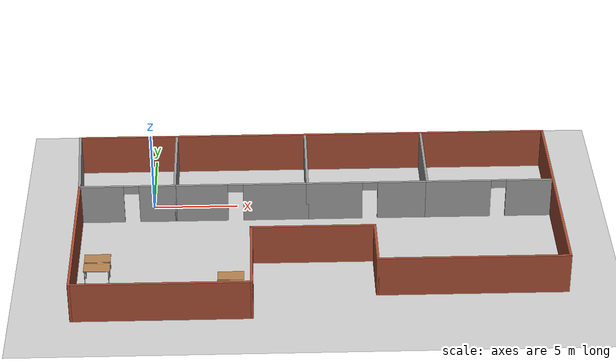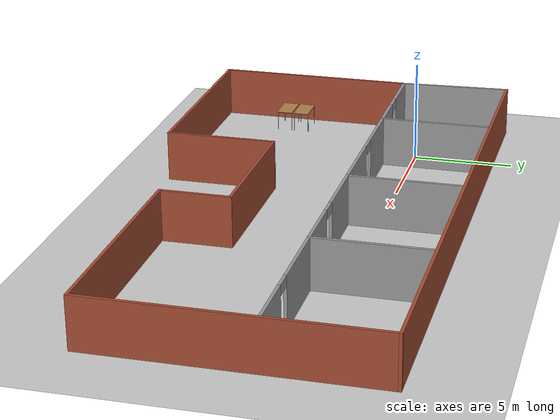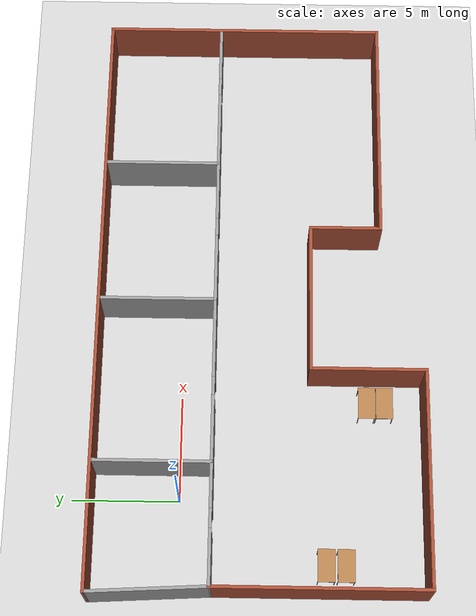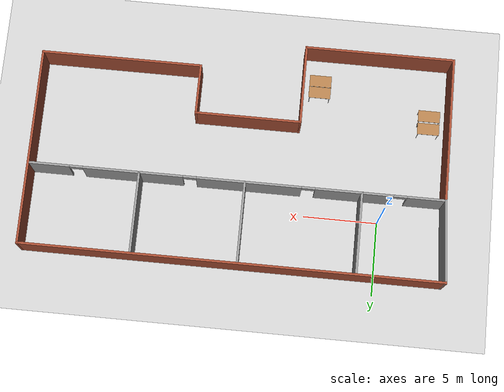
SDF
<sdf version="1.6">
 <world name="default">
  <light name="sun" type="directional">
   <pose>0 0 10 0 -0 0</pose>
   <diffuse>0.8 0.8 0.8 1</diffuse>
   <specular>0.2 0.2 0.2 1</specular>
   <attenuation>
    <range>1000</range>
    <constant>0.9</constant>
    <linear>0.01</linear>
    <quadratic>0.001</quadratic>
   </attenuation>
   <direction>-0.5 0.1 -0.9</direction>
  </light>
  <model name="ground_plane">
   <static>1</static>
   <link name="link">
    <collision name="collision">
     <geometry><plane><normal>0 0 1</normal><size>100 100</size></plane></geometry>
     <surface><friction><ode><mu>100</mu><mu2>50</mu2></ode></friction></surface>
    </collision>
    <visual name="visual">
     <cast_shadows>0</cast_shadows>
     <geometry><plane><normal>0 0 1</normal><size>100 100</size></plane></geometry>
     <material>
      <script><uri>file://media/materials/scripts/gazebo.material</uri><name>Gazebo/Grey</name></script>
     </material>
    </visual>
   </link>
  </model>
  <gravity>0 0 -9.8</gravity>
  <magnetic_field>6e-06 2.3e-05 -4.2e-05</magnetic_field>
  <atmosphere type="adiabatic"/>
  <physics name="default_physics" default="0" type="ode">
   <max_step_size>0.001</max_step_size>
   <real_time_factor>1</real_time_factor>
   <real_time_update_rate>1000</real_time_update_rate>
  </physics>
  <scene><ambient>0.4 0.4 0.4 1</ambient><background>0.7 0.7 0.7 1</background><shadows>1</shadows></scene>
  <spherical_coordinates>
   <surface_model>EARTH_WGS84</surface_model>
   <latitude_deg>0</latitude_deg>
   <longitude_deg>0</longitude_deg>
   <elevation>0</elevation>
   <heading_deg>0</heading_deg>
  </spherical_coordinates>
  <model name="MyOffice">
   <pose>9.60301 -3.65301 0 0 -0 0</pose>
   <link name="Wall_0">
    <collision name="Wall_0_Collision">
     <geometry><box><size>10 0.15 2.5</size></box></geometry>
     <pose>0 0 1.25 0 -0 0</pose>
    </collision>
    <visual name="Wall_0_Visual">
     <pose>0 0 1.25 0 -0 0</pose>
     <geometry><box><size>10 0.15 2.5</size></box></geometry>
     <material>
      <script><uri>file://media/materials/scripts/gazebo.material</uri><name>Gazebo/Bricks</name></script>
      <ambient>1 1 1 1</ambient>
     </material>
     <meta><layer>0</layer></meta>
    </visual>
    <pose>-13.873 -2.75199 0 0 0 -1.5708</pose>
   </link>
   <link name="Wall_1">
    <collision name="Wall_1_Collision">
     <geometry><box><size>10.25 0.15 2.5</size></box></geometry>
     <pose>0 0 1.25 0 -0 0</pose>
    </collision>
    <visual name="Wall_1_Visual">
     <pose>0 0 1.25 0 -0 0</pose>
     <geometry><box><size>10.25 0.15 2.5</size></box></geometry>
     <material>
      <script><uri>file://media/materials/scripts/gazebo.material</uri><name>Gazebo/Bricks</name></script>
      <ambient>1 1 1 1</ambient>
     </material>
     <meta><layer>0</layer></meta>
    </visual>
    <pose>-8.82301 -7.67699 0 0 -0 0</pose>
   </link>
   <link name="Wall_10">
    <collision name="Wall_10_Collision">
     <geometry><box><size>5.5 0.15 2.5</size></box></geometry>
     <pose>0 0 1.25 0 -0 0</pose>
    </collision>
    <visual name="Wall_10_Visual">
     <pose>0 0 1.25 0 -0 0</pose>
     <geometry><box><size>5.5 0.15 2.5</size></box></geometry>
     <material>
      <script><uri>file://media/materials/scripts/gazebo.material</uri><name>Gazebo/Grey</name></script>
      <ambient>1 1 1 1</ambient>
     </material>
     <meta><layer>0</layer></meta>
    </visual>
    <pose>-8.27301 4.84801 0 0 -0 1.5708</pose>
   </link>
   <link name="Wall_12">
    <pose>-4.34801 2.17301 0 0 -0 0</pose>
    <visual name="Wall_12_Visual_0">
     <pose>-2.39397 0 1.25 0 -0 0</pose>
     <geometry><box><size>3.21206 0.15 2.5</size></box></geometry>
     <material>
      <script><uri>file://media/materials/scripts/gazebo.material</uri><name>Gazebo/Grey</name></script>
      <ambient>1 1 1 1</ambient>
     </material>
     <meta><layer>0</layer></meta>
    </visual>
    <collision name="Wall_12_Collision_0">
     <geometry><box><size>3.21206 0.15 2.5</size></box></geometry>
     <pose>-2.39397 0 1.25 0 -0 0</pose>
    </collision>
    <visual name="Wall_12_Visual_1">
     <pose>2.05603 0 1.25 0 -0 0</pose>
     <geometry><box><size>3.88794 0.15 2.5</size></box></geometry>
     <material>
      <script><uri>file://media/materials/scripts/gazebo.material</uri><name>Gazebo/Grey</name></script>
      <ambient>1 1 1 1</ambient>
     </material>
     <meta><layer>0</layer></meta>
    </visual>
    <collision name="Wall_12_Collision_1">
     <geometry><box><size>3.88794 0.15 2.5</size></box></geometry>
     <pose>2.05603 0 1.25 0 -0 0</pose>
    </collision>
    <visual name="Wall_12_Visual_2">
     <pose>-0.337937 0 2.25 0 -0 0</pose>
     <geometry><box><size>0.9 0.15 0.5</size></box></geometry>
     <material>
      <script><uri>file://media/materials/scripts/gazebo.material</uri><name>Gazebo/Grey</name></script>
      <ambient>1 1 1 1</ambient>
     </material>
     <meta><layer>0</layer></meta>
    </visual>
    <collision name="Wall_12_Collision_2">
     <geometry><box><size>0.9 0.15 0.5</size></box></geometry>
     <pose>-0.337937 0 2.25 0 -0 0</pose>
    </collision>
   </link>
   <link name="Wall_13">
    <collision name="Wall_13_Collision">
     <geometry><box><size>5.5 0.15 2.5</size></box></geometry>
     <pose>0 0 1.25 0 -0 0</pose>
    </collision>
    <visual name="Wall_13_Visual">
     <pose>0 0 1.25 0 -0 0</pose>
     <geometry><box><size>5.5 0.15 2.5</size></box></geometry>
     <material>
      <script><uri>file://media/materials/scripts/gazebo.material</uri><name>Gazebo/Grey</name></script>
      <ambient>1 1 1 1</ambient>
     </material>
     <meta><layer>0</layer></meta>
    </visual>
    <pose>-0.423014 4.84801 0 0 -0 1.5708</pose>
   </link>
   <link name="Wall_15">
    <pose>3.12699 2.17301 0 0 -0 0</pose>
    <visual name="Wall_15_Visual_0">
     <pose>-1.95623 0 1.25 0 -0 0</pose>
     <geometry><box><size>3.33753 0.15 2.5</size></box></geometry>
     <material>
      <script><uri>file://media/materials/scripts/gazebo.material</uri><name>Gazebo/Grey</name></script>
      <ambient>1 1 1 1</ambient>
     </material>
     <meta><layer>0</layer></meta>
    </visual>
    <collision name="Wall_15_Collision_0">
     <geometry><box><size>3.33753 0.15 2.5</size></box></geometry>
     <pose>-1.95623 0 1.25 0 -0 0</pose>
    </collision>
    <visual name="Wall_15_Visual_1">
     <pose>2.11877 0 1.25 0 -0 0</pose>
     <geometry><box><size>3.01247 0.15 2.5</size></box></geometry>
     <material>
      <script><uri>file://media/materials/scripts/gazebo.material</uri><name>Gazebo/Grey</name></script>
      <ambient>1 1 1 1</ambient>
     </material>
     <meta><layer>0</layer></meta>
    </visual>
    <collision name="Wall_15_Collision_1">
     <geometry><box><size>3.01247 0.15 2.5</size></box></geometry>
     <pose>2.11877 0 1.25 0 -0 0</pose>
    </collision>
    <visual name="Wall_15_Visual_2">
     <pose>0.162532 0 2.25 0 -0 0</pose>
     <geometry><box><size>0.9 0.15 0.5</size></box></geometry>
     <material>
      <script><uri>file://media/materials/scripts/gazebo.material</uri><name>Gazebo/Grey</name></script>
      <ambient>1 1 1 1</ambient>
     </material>
     <meta><layer>0</layer></meta>
    </visual>
    <collision name="Wall_15_Collision_2">
     <geometry><box><size>0.9 0.15 0.5</size></box></geometry>
     <pose>0.162532 0 2.25 0 -0 0</pose>
    </collision>
   </link>
   <link name="Wall_16">
    <collision name="Wall_16_Collision">
     <geometry><box><size>5.5 0.15 2.5</size></box></geometry>
     <pose>0 0 1.25 0 -0 0</pose>
    </collision>
    <visual name="Wall_16_Visual">
     <pose>0 0 1.25 0 -0 0</pose>
     <geometry><box><size>5.5 0.15 2.5</size></box></geometry>
     <material>
      <script><uri>file://media/materials/scripts/gazebo.material</uri><name>Gazebo/Grey</name></script>
      <ambient>1 1 1 1</ambient>
     </material>
     <meta><layer>0</layer></meta>
    </visual>
    <pose>6.67699 4.84801 0 0 -0 1.5708</pose>
   </link>
   <link name="Wall_18">
    <pose>10.352 2.17301 0 0 -0 0</pose>
    <visual name="Wall_18_Visual_0">
     <pose>-1.80674 0 1.25 0 -0 0</pose>
     <geometry><box><size>3.88652 0.15 2.5</size></box></geometry>
     <material>
      <script><uri>file://media/materials/scripts/gazebo.material</uri><name>Gazebo/Grey</name></script>
      <ambient>1 1 1 1</ambient>
     </material>
     <meta><layer>0</layer></meta>
    </visual>
    <collision name="Wall_18_Collision_0">
     <geometry><box><size>3.88652 0.15 2.5</size></box></geometry>
     <pose>-1.80674 0 1.25 0 -0 0</pose>
    </collision>
    <visual name="Wall_18_Visual_1">
     <pose>2.39326 0 1.25 0 -0 0</pose>
     <geometry><box><size>2.71348 0.15 2.5</size></box></geometry>
     <material>
      <script><uri>file://media/materials/scripts/gazebo.material</uri><name>Gazebo/Grey</name></script>
      <ambient>1 1 1 1</ambient>
     </material>
     <meta><layer>0</layer></meta>
    </visual>
    <collision name="Wall_18_Collision_1">
     <geometry><box><size>2.71348 0.15 2.5</size></box></geometry>
     <pose>2.39326 0 1.25 0 -0 0</pose>
    </collision>
    <visual name="Wall_18_Visual_2">
     <pose>0.586519 0 2.25 0 -0 0</pose>
     <geometry><box><size>0.9 0.15 0.5</size></box></geometry>
     <material>
      <script><uri>file://media/materials/scripts/gazebo.material</uri><name>Gazebo/Grey</name></script>
      <ambient>1 1 1 1</ambient>
     </material>
     <meta><layer>0</layer></meta>
    </visual>
    <collision name="Wall_18_Collision_2">
     <geometry><box><size>0.9 0.15 0.5</size></box></geometry>
     <pose>0.586519 0 2.25 0 -0 0</pose>
    </collision>
   </link>
   <link name="Wall_2">
    <collision name="Wall_2_Collision">
     <geometry><box><size>5.5 0.15 2.5</size></box></geometry>
     <pose>0 0 1.25 0 -0 0</pose>
    </collision>
    <visual name="Wall_2_Visual">
     <pose>0 0 1.25 0 -0 0</pose>
     <geometry><box><size>5.5 0.15 2.5</size></box></geometry>
     <material>
      <script><uri>file://media/materials/scripts/gazebo.material</uri><name>Gazebo/Bricks</name></script>
      <ambient>1 1 1 1</ambient>
     </material>
     <meta><layer>0</layer></meta>
    </visual>
    <pose>-3.77301 -5.00199 0 0 -0 1.5708</pose>
   </link>
   <link name="Wall_3">
    <collision name="Wall_3_Collision">
     <geometry><box><size>7.25 0.15 2.5</size></box></geometry>
     <pose>0 0 1.25 0 -0 0</pose>
    </collision>
    <visual name="Wall_3_Visual">
     <pose>0 0 1.25 0 -0 0</pose>
     <geometry><box><size>7.25 0.15 2.5</size></box></geometry>
     <material>
      <script><uri>file://media/materials/scripts/gazebo.material</uri><name>Gazebo/Bricks</name></script>
      <ambient>1 1 1 1</ambient>
     </material>
     <meta><layer>0</layer></meta>
    </visual>
    <pose>-0.223014 -2.32699 0 0 -0 0</pose>
   </link>
   <link name="Wall_4">
    <collision name="Wall_4_Collision">
     <geometry><box><size>3.5 0.15 2.5</size></box></geometry>
     <pose>0 0 1.25 0 -0 0</pose>
    </collision>
    <visual name="Wall_4_Visual">
     <pose>0 0 1.25 0 -0 0</pose>
     <geometry><box><size>3.5 0.15 2.5</size></box></geometry>
     <material>
      <script><uri>file://media/materials/scripts/gazebo.material</uri><name>Gazebo/Bricks</name></script>
      <ambient>1 1 1 1</ambient>
     </material>
     <meta><layer>0</layer></meta>
    </visual>
    <pose>3.32699 -4.00199 0 0 0 -1.5708</pose>
   </link>
   <link name="Wall_5">
    <collision name="Wall_5_Collision">
     <geometry><box><size>11 0.15 2.5</size></box></geometry>
     <pose>0 0 1.25 0 -0 0</pose>
    </collision>
    <visual name="Wall_5_Visual">
     <pose>0 0 1.25 0 -0 0</pose>
     <geometry><box><size>11 0.15 2.5</size></box></geometry>
     <material>
      <script><uri>file://media/materials/scripts/gazebo.material</uri><name>Gazebo/Bricks</name></script>
      <ambient>1 1 1 1</ambient>
     </material>
     <meta><layer>0</layer></meta>
    </visual>
    <pose>8.75199 -5.67699 0 0 -0 0</pose>
   </link>
   <link name="Wall_6">
    <collision name="Wall_6_Collision">
     <geometry><box><size>13.5 0.15 2.5</size></box></geometry>
     <pose>0 0 1.25 0 -0 0</pose>
    </collision>
    <visual name="Wall_6_Visual">
     <pose>0 0 1.25 0 -0 0</pose>
     <geometry><box><size>13.5 0.15 2.5</size></box></geometry>
     <material>
      <script><uri>file://media/materials/scripts/gazebo.material</uri><name>Gazebo/Bricks</name></script>
      <ambient>1 1 1 1</ambient>
     </material>
     <meta><layer>0</layer></meta>
    </visual>
    <pose>14.177 0.998013 0 0 -0 1.5708</pose>
   </link>
   <link name="Wall_7">
    <collision name="Wall_7_Collision">
     <geometry><box><size>28.5 0.15 2.5</size></box></geometry>
     <pose>0 0 1.25 0 -0 0</pose>
    </collision>
    <visual name="Wall_7_Visual">
     <pose>0 0 1.25 0 -0 0</pose>
     <geometry><box><size>28.5 0.15 2.5</size></box></geometry>
     <material>
      <script><uri>file://media/materials/scripts/gazebo.material</uri><name>Gazebo/Bricks</name></script>
      <ambient>1 1 1 1</ambient>
     </material>
     <meta><layer>0</layer></meta>
    </visual>
    <pose>0.001986 7.67301 0 0 -0 3.14159</pose>
   </link>
   <link name="Wall_8">
    <collision name="Wall_8_Collision">
     <geometry><box><size>5.65818 0.15 2.5</size></box></geometry>
     <pose>0 0 1.25 0 -0 0</pose>
    </collision>
    <visual name="Wall_8_Visual">
     <pose>0 0 1.25 0 -0 0</pose>
     <geometry><box><size>5.65818 0.15 2.5</size></box></geometry>
     <material>
      <script><uri>file://media/materials/scripts/gazebo.material</uri><name>Gazebo/Grey</name></script>
      <ambient>1 1 1 1</ambient>
     </material>
     <meta><layer>0</layer></meta>
    </visual>
    <pose>-14.023 4.92301 0 0 0 -1.51631</pose>
   </link>
   <link name="Wall_9">
    <pose>-11.073 2.17301 0 0 -0 0</pose>
    <visual name="Wall_9_Visual_0">
     <pose>-1.54722 0 1.25 0 -0 0</pose>
     <geometry><box><size>2.65556 0.15 2.5</size></box></geometry>
     <material>
      <script><uri>file://media/materials/scripts/gazebo.material</uri><name>Gazebo/Grey</name></script>
      <ambient>1 1 1 1</ambient>
     </material>
     <meta><layer>0</layer></meta>
    </visual>
    <collision name="Wall_9_Collision_0">
     <geometry><box><size>2.65556 0.15 2.5</size></box></geometry>
     <pose>-1.54722 0 1.25 0 -0 0</pose>
    </collision>
    <visual name="Wall_9_Visual_1">
     <pose>1.77778 0 1.25 0 -0 0</pose>
     <geometry><box><size>2.19444 0.15 2.5</size></box></geometry>
     <material>
      <script><uri>file://media/materials/scripts/gazebo.material</uri><name>Gazebo/Grey</name></script>
      <ambient>1 1 1 1</ambient>
     </material>
     <meta><layer>0</layer></meta>
    </visual>
    <collision name="Wall_9_Collision_1">
     <geometry><box><size>2.19444 0.15 2.5</size></box></geometry>
     <pose>1.77778 0 1.25 0 -0 0</pose>
    </collision>
    <visual name="Wall_9_Visual_2">
     <pose>0.230561 0 2.25 0 -0 0</pose>
     <geometry><box><size>0.9 0.15 0.5</size></box></geometry>
     <material>
      <script><uri>file://media/materials/scripts/gazebo.material</uri><name>Gazebo/Grey</name></script>
      <ambient>1 1 1 1</ambient>
     </material>
     <meta><layer>0</layer></meta>
    </visual>
    <collision name="Wall_9_Collision_2">
     <geometry><box><size>0.9 0.15 0.5</size></box></geometry>
     <pose>0.230561 0 2.25 0 -0 0</pose>
    </collision>
   </link>
   <static>1</static>
  </model>
  <model name="table">
   <static>1</static>
   <link name="link">
    <collision name="surface">
     <pose>0 0 1 0 -0 0</pose>
     <geometry><box><size>1.5 0.8 0.03</size></box></geometry>
     <surface><friction><ode><mu>0.6</mu><mu2>0.6</mu2></ode></friction></surface>
    </collision>
    <visual name="visual1">
     <pose>0 0 1 0 -0 0</pose>
     <geometry><box><size>1.5 0.8 0.03</size></box></geometry>
     <material>
      <script><uri>file://media/materials/scripts/gazebo.material</uri><name>Gazebo/Wood</name></script>
     </material>
    </visual>
    <collision name="front_left_leg">
     <pose>0.68 0.38 0.5 0 -0 0</pose>
     <geometry><cylinder><radius>0.02</radius><length>1</length></cylinder></geometry>
    </collision>
    <visual name="front_left_leg">
     <pose>0.68 0.38 0.5 0 -0 0</pose>
     <geometry><cylinder><radius>0.02</radius><length>1</length></cylinder></geometry>
     <material>
      <script><uri>file://media/materials/scripts/gazebo.material</uri><name>Gazebo/Grey</name></script>
     </material>
    </visual>
    <collision name="front_right_leg">
     <pose>0.68 -0.38 0.5 0 -0 0</pose>
     <geometry><cylinder><radius>0.02</radius><length>1</length></cylinder></geometry>
    </collision>
    <visual name="front_right_leg">
     <pose>0.68 -0.38 0.5 0 -0 0</pose>
     <geometry><cylinder><radius>0.02</radius><length>1</length></cylinder></geometry>
     <material>
      <script><uri>file://media/materials/scripts/gazebo.material</uri><name>Gazebo/Grey</name></script>
     </material>
    </visual>
    <collision name="back_right_leg">
     <pose>-0.68 -0.38 0.5 0 -0 0</pose>
     <geometry><cylinder><radius>0.02</radius><length>1</length></cylinder></geometry>
    </collision>
    <visual name="back_right_leg">
     <pose>-0.68 -0.38 0.5 0 -0 0</pose>
     <geometry><cylinder><radius>0.02</radius><length>1</length></cylinder></geometry>
     <material>
      <script><uri>file://media/materials/scripts/gazebo.material</uri><name>Gazebo/Grey</name></script>
     </material>
    </visual>
    <collision name="back_left_leg">
     <pose>-0.68 0.38 0.5 0 -0 0</pose>
     <geometry><cylinder><radius>0.02</radius><length>1</length></cylinder></geometry>
    </collision>
    <visual name="back_left_leg">
     <pose>-0.68 0.38 0.5 0 -0 0</pose>
     <geometry><cylinder><radius>0.02</radius><length>1</length></cylinder></geometry>
     <material>
      <script><uri>file://media/materials/scripts/gazebo.material</uri><name>Gazebo/Grey</name></script>
     </material>
    </visual>
   </link>
   <pose>-3.00516 -7.63008 0 0 -0 0</pose>
  </model>
  <model name="table_clone">
   <static>1</static>
   <link name="link">
    <collision name="surface">
     <pose>0 0 1 0 -0 0</pose>
     <geometry><box><size>1.5 0.8 0.03</size></box></geometry>
     <surface><friction><ode><mu>0.6</mu><mu2>0.6</mu2></ode></friction></surface>
    </collision>
    <visual name="visual1">
     <pose>0 0 1 0 -0 0</pose>
     <geometry><box><size>1.5 0.8 0.03</size></box></geometry>
     <material>
      <script><uri>file://media/materials/scripts/gazebo.material</uri><name>Gazebo/Wood</name></script>
     </material>
    </visual>
    <collision name="front_left_leg">
     <pose>0.68 0.38 0.5 0 -0 0</pose>
     <geometry><cylinder><radius>0.02</radius><length>1</length></cylinder></geometry>
    </collision>
    <visual name="front_left_leg">
     <pose>0.68 0.38 0.5 0 -0 0</pose>
     <geometry><cylinder><radius>0.02</radius><length>1</length></cylinder></geometry>
     <material>
      <script><uri>file://media/materials/scripts/gazebo.material</uri><name>Gazebo/Grey</name></script>
     </material>
    </visual>
    <collision name="front_right_leg">
     <pose>0.68 -0.38 0.5 0 -0 0</pose>
     <geometry><cylinder><radius>0.02</radius><length>1</length></cylinder></geometry>
    </collision>
    <visual name="front_right_leg">
     <pose>0.68 -0.38 0.5 0 -0 0</pose>
     <geometry><cylinder><radius>0.02</radius><length>1</length></cylinder></geometry>
     <material>
      <script><uri>file://media/materials/scripts/gazebo.material</uri><name>Gazebo/Grey</name></script>
     </material>
    </visual>
    <collision name="back_right_leg">
     <pose>-0.68 -0.38 0.5 0 -0 0</pose>
     <geometry><cylinder><radius>0.02</radius><length>1</length></cylinder></geometry>
    </collision>
    <visual name="back_right_leg">
     <pose>-0.68 -0.38 0.5 0 -0 0</pose>
     <geometry><cylinder><radius>0.02</radius><length>1</length></cylinder></geometry>
     <material>
      <script><uri>file://media/materials/scripts/gazebo.material</uri><name>Gazebo/Grey</name></script>
     </material>
    </visual>
    <collision name="back_left_leg">
     <pose>-0.68 0.38 0.5 0 -0 0</pose>
     <geometry><cylinder><radius>0.02</radius><length>1</length></cylinder></geometry>
    </collision>
    <visual name="back_left_leg">
     <pose>-0.68 0.38 0.5 0 -0 0</pose>
     <geometry><cylinder><radius>0.02</radius><length>1</length></cylinder></geometry>
     <material>
      <script><uri>file://media/materials/scripts/gazebo.material</uri><name>Gazebo/Grey</name></script>
     </material>
    </visual>
   </link>
   <pose>-2.99794 -6.72761 0 0 -0 0</pose>
  </model>
  <model name="table_clone_0">
   <static>1</static>
   <link name="link">
    <collision name="surface">
     <pose>0 0 1 0 -0 0</pose>
     <geometry><box><size>1.5 0.8 0.03</size></box></geometry>
     <surface><friction><ode><mu>0.6</mu><mu2>0.6</mu2></ode></friction></surface>
    </collision>
    <visual name="visual1">
     <pose>0 0 1 0 -0 0</pose>
     <geometry><box><size>1.5 0.8 0.03</size></box></geometry>
     <material>
      <script><uri>file://media/materials/scripts/gazebo.material</uri><name>Gazebo/Wood</name></script>
     </material>
    </visual>
    <collision name="front_left_leg">
     <pose>0.68 0.38 0.5 0 -0 0</pose>
     <geometry><cylinder><radius>0.02</radius><length>1</length></cylinder></geometry>
    </collision>
    <visual name="front_left_leg">
     <pose>0.68 0.38 0.5 0 -0 0</pose>
     <geometry><cylinder><radius>0.02</radius><length>1</length></cylinder></geometry>
     <material>
      <script><uri>file://media/materials/scripts/gazebo.material</uri><name>Gazebo/Grey</name></script>
     </material>
    </visual>
    <collision name="front_right_leg">
     <pose>0.68 -0.38 0.5 0 -0 0</pose>
     <geometry><cylinder><radius>0.02</radius><length>1</length></cylinder></geometry>
    </collision>
    <visual name="front_right_leg">
     <pose>0.68 -0.38 0.5 0 -0 0</pose>
     <geometry><cylinder><radius>0.02</radius><length>1</length></cylinder></geometry>
     <material>
      <script><uri>file://media/materials/scripts/gazebo.material</uri><name>Gazebo/Grey</name></script>
     </material>
    </visual>
    <collision name="back_right_leg">
     <pose>-0.68 -0.38 0.5 0 -0 0</pose>
     <geometry><cylinder><radius>0.02</radius><length>1</length></cylinder></geometry>
    </collision>
    <visual name="back_right_leg">
     <pose>-0.68 -0.38 0.5 0 -0 0</pose>
     <geometry><cylinder><radius>0.02</radius><length>1</length></cylinder></geometry>
     <material>
      <script><uri>file://media/materials/scripts/gazebo.material</uri><name>Gazebo/Grey</name></script>
     </material>
    </visual>
    <collision name="back_left_leg">
     <pose>-0.68 0.38 0.5 0 -0 0</pose>
     <geometry><cylinder><radius>0.02</radius><length>1</length></cylinder></geometry>
    </collision>
    <visual name="back_left_leg">
     <pose>-0.68 0.38 0.5 0 -0 0</pose>
     <geometry><cylinder><radius>0.02</radius><length>1</length></cylinder></geometry>
     <material>
      <script><uri>file://media/materials/scripts/gazebo.material</uri><name>Gazebo/Grey</name></script>
     </material>
    </visual>
   </link>
   <pose>4.63511 -9.46708 0 0 -0 0</pose>
  </model>
  <model name="table_clone_1">
   <static>1</static>
   <link name="link">
    <collision name="surface">
     <pose>0 0 1 0 -0 0</pose>
     <geometry><box><size>1.5 0.8 0.03</size></box></geometry>
     <surface><friction><ode><mu>0.6</mu><mu2>0.6</mu2></ode></friction></surface>
    </collision>
    <visual name="visual1">
     <pose>0 0 1 0 -0 0</pose>
     <geometry><box><size>1.5 0.8 0.03</size></box></geometry>
     <material>
      <script><uri>file://media/materials/scripts/gazebo.material</uri><name>Gazebo/Wood</name></script>
     </material>
    </visual>
    <collision name="front_left_leg">
     <pose>0.68 0.38 0.5 0 -0 0</pose>
     <geometry><cylinder><radius>0.02</radius><length>1</length></cylinder></geometry>
    </collision>
    <visual name="front_left_leg">
     <pose>0.68 0.38 0.5 0 -0 0</pose>
     <geometry><cylinder><radius>0.02</radius><length>1</length></cylinder></geometry>
     <material>
      <script><uri>file://media/materials/scripts/gazebo.material</uri><name>Gazebo/Grey</name></script>
     </material>
    </visual>
    <collision name="front_right_leg">
     <pose>0.68 -0.38 0.5 0 -0 0</pose>
     <geometry><cylinder><radius>0.02</radius><length>1</length></cylinder></geometry>
    </collision>
    <visual name="front_right_leg">
     <pose>0.68 -0.38 0.5 0 -0 0</pose>
     <geometry><cylinder><radius>0.02</radius><length>1</length></cylinder></geometry>
     <material>
      <script><uri>file://media/materials/scripts/gazebo.material</uri><name>Gazebo/Grey</name></script>
     </material>
    </visual>
    <collision name="back_right_leg">
     <pose>-0.68 -0.38 0.5 0 -0 0</pose>
     <geometry><cylinder><radius>0.02</radius><length>1</length></cylinder></geometry>
    </collision>
    <visual name="back_right_leg">
     <pose>-0.68 -0.38 0.5 0 -0 0</pose>
     <geometry><cylinder><radius>0.02</radius><length>1</length></cylinder></geometry>
     <material>
      <script><uri>file://media/materials/scripts/gazebo.material</uri><name>Gazebo/Grey</name></script>
     </material>
    </visual>
    <collision name="back_left_leg">
     <pose>-0.68 0.38 0.5 0 -0 0</pose>
     <geometry><cylinder><radius>0.02</radius><length>1</length></cylinder></geometry>
    </collision>
    <visual name="back_left_leg">
     <pose>-0.68 0.38 0.5 0 -0 0</pose>
     <geometry><cylinder><radius>0.02</radius><length>1</length></cylinder></geometry>
     <material>
      <script><uri>file://media/materials/scripts/gazebo.material</uri><name>Gazebo/Grey</name></script>
     </material>
    </visual>
   </link>
   <pose>4.63523 -8.64393 0 0 -0 0</pose>
  </model>
 </world>
</sdf>
